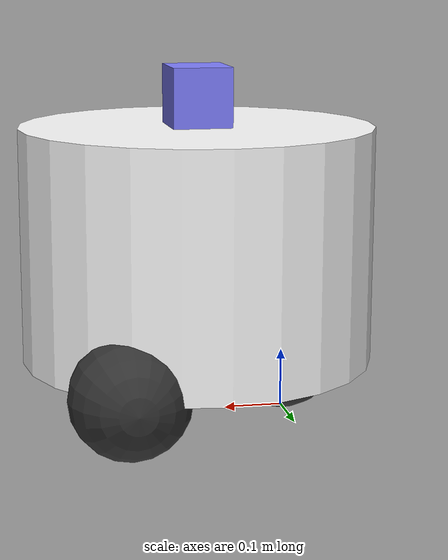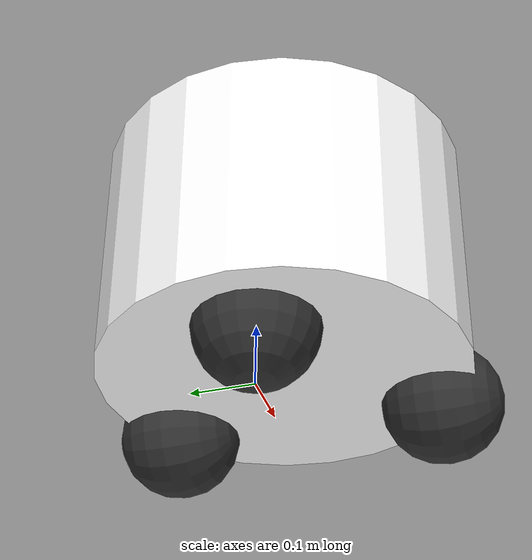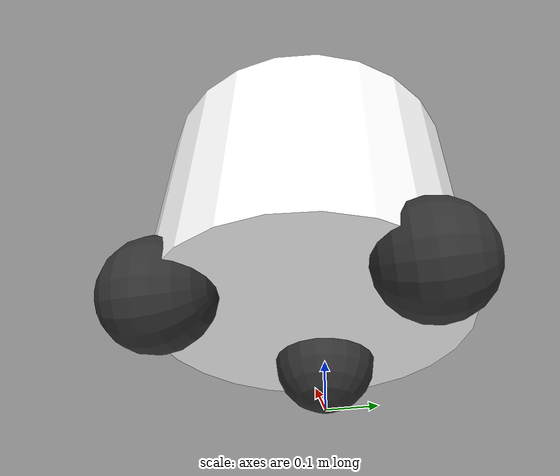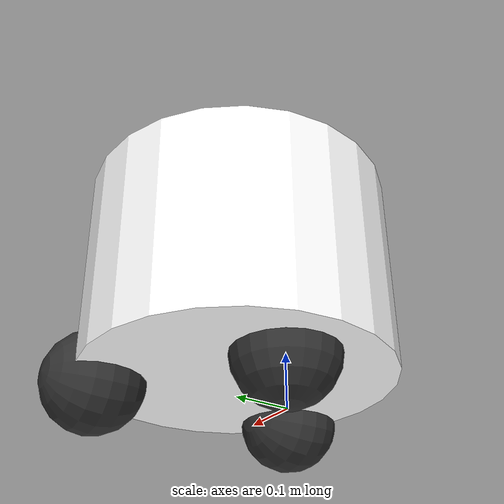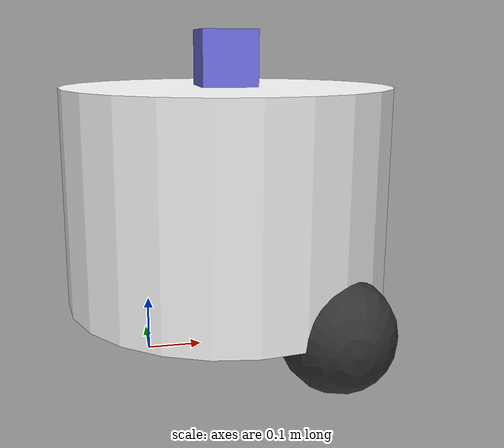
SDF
<?xml version="1.0" ?>
<sdf version="1.6">
<model name='vehicle_blue'>
      <pose>0 0  0.3 0 -0 0</pose>

      <link name='chassis'>
        <pose>0.151427 -0 0.00 0 -0 0</pose>
        <inertial>
          <mass>1.14395</mass>
          <inertia>
            <ixx>0.126164</ixx>
            <ixy>0</ixy>
            <ixz>0</ixz>
            <iyy>0.416519</iyy>
            <iyz>0</iyz>
            <izz>0.481014</izz>
          </inertia>
        </inertial>
        <visual name='visual'>
          <geometry>
            <cylinder>
              <radius> 0.3 </radius>
              <length> 0.4 </length>
            </cylinder>
          </geometry>
          <material>
            <ambient>1.5 1.5 1.0 1</ambient>
            <diffuse>1.5 1.5 1.0 1</diffuse>
            <specular>0.0 0.0 1.0 1</specular>
          </material>
        </visual>
        <collision name='collision'>
          <geometry>
            <cylinder>
              <radius> 0.3 </radius>
              <length> 0.4 </length>
            </cylinder>
          </geometry>
        </collision>
      </link>

      <link name='left_wheel'>
        <pose>0.3 0.225 -0.2 -1.5707 0 0</pose>
        <inertial>
          <mass>2</mass>
          <inertia>
            <ixx>0.01</ixx>
            <ixy>0</ixy>
            <ixz>0</ixz>
            <iyy>0.01</iyy>
            <iyz>0</iyz>
            <izz>0.01</izz>
          </inertia>
        </inertial>
        <visual name='visual'>
          <geometry>
            <sphere>
              <radius>0.1</radius>
            </sphere>
          </geometry>
          <material>
            <ambient>0.2 0.2 0.2 1</ambient>
            <diffuse>0.2 0.2 0.2 1</diffuse>
            <specular>0.2 0.2 0.2 1</specular>
          </material>
        </visual>
        <collision name='collision'>
          <geometry>
            <sphere>
              <radius>0.1</radius>
            </sphere>
          </geometry>
        </collision>
      </link>

      <link name='right_wheel'>
        <pose>0.3 -0.225 -0.2 -1.5707 0 0</pose>
        <inertial>
          <mass>2</mass>
          <inertia>
            <ixx>0.01</ixx>
            <ixy>0</ixy>
            <ixz>0</ixz>
            <iyy>0.01</iyy>
            <iyz>0</iyz>
            <izz>0.01</izz>
          </inertia>
        </inertial>
        <visual name='visual'>
          <geometry>
            <sphere>
              <radius>0.1</radius>
            </sphere>
          </geometry>
          <material>
            <ambient>0.2 0.2 0.2 1</ambient>
            <diffuse>0.2 0.2 0.2 1</diffuse>
            <specular>0.2 0.2 0.2 1</specular>
          </material>
        </visual>
        <collision name='collision'>
          <geometry>
            <sphere>
              <radius>0.1</radius>
            </sphere>
          </geometry>
        </collision>
      </link>

      <link name='caster'>
        <pose>-0.0 -0 -0.2 0 -0 0</pose>
        <inertial>
          <mass>1</mass>
          <inertia>
            <ixx>0.1</ixx>
            <ixy>0</ixy>
            <ixz>0</ixz>
            <iyy>0.1</iyy>
            <iyz>0</iyz>
            <izz>0.1</izz>
          </inertia>
        </inertial>
        <visual name='visual'>
          <geometry>
            <sphere>
              <radius>0.1</radius>
            </sphere>
          </geometry>
          <material>
            <ambient>0.2 0.2 0.2 1</ambient>
            <diffuse>0.2 0.2 0.2 1</diffuse>
            <specular>0.2 0.2 0.2 1</specular>
          </material>
        </visual>
        <collision name='collision'>
          <geometry>
            <sphere>
              <radius>0.1</radius>
            </sphere>
          </geometry>
        </collision>
      </link>

      <link name='lidar'>
        <pose>0.15 -0 0.25 0 -0 0</pose>
        <inertial>
          <mass>1.14395</mass>
          <inertia>
            <ixx>0.126164</ixx>
            <ixy>0</ixy>
            <ixz>0</ixz>
            <iyy>0.416519</iyy>
            <iyz>0</iyz>
            <izz>0.481014</izz>
          </inertia>
        </inertial>
        <visual name='visual'>
          <geometry>
            <box>
              <size>0.1 0.11 0.1</size>
            </box>
          </geometry>
          <material>
            <ambient>0.5 0.5 1.0 1</ambient>
            <diffuse>0.5 0.5 1.0 1</diffuse>
            <specular>0.0 0.0 1.0 1</specular>
          </material>
        </visual>
        <sensor name='gpu_lidar' type='gpu_lidar'>
          <topic>lidar</topic>
          <update_rate>1000</update_rate>
          <lidar>
            <scan>
              <horizontal>
                <samples>100</samples>
                <resolution>1</resolution>
                <min_angle>-3.14</min_angle>
                <max_angle>3.14</max_angle>
              </horizontal>
              <vertical>
                <samples>1</samples>
                <resolution>1</resolution>
                <min_angle>-0</min_angle>
                <max_angle>0</max_angle>
              </vertical>
            </scan>
            <range>
              <min>0.08</min>
              <max>5.0</max>
              <resolution>0.01</resolution>
            </range>
          </lidar>
          <alwaysOn>1</alwaysOn>
          <visualize>true</visualize>
        </sensor>
      </link>

      <joint name='left_wheel_joint' type='revolute'>
        <parent>chassis</parent>
        <child>left_wheel</child>
        <axis>
          <xyz>0 0 1</xyz>
          <limit>
            <lower>-1.79769e+308</lower>
            <upper>1.79769e+308</upper>
          </limit>
        </axis>
      </joint>

       <joint name='lidar_joint' type='fixed'>
        <parent>chassis</parent>
        <child>lidar</child>
        <axis>
          <xyz>0 0 1</xyz>
          <limit>
            <lower>-1.79769e+308</lower>
            <upper>1.79769e+308</upper>
          </limit>
        </axis>
      </joint>

      <joint name='right_wheel_joint' type='revolute'>
        <parent>chassis</parent>
        <child>right_wheel</child>
        <axis>
          <xyz>0 0 1</xyz>
          <limit>
            <lower>-1.79769e+308</lower>
            <upper>1.79769e+308</upper>
          </limit>
        </axis>
      </joint>

      <joint name='caster_wheel' type='ball'>
        <parent>chassis</parent>
        <child>caster</child>
      </joint>

      <plugin
        filename="ignition-gazebo-diff-drive-system"
        name="ignition::gazebo::systems::DiffDrive">
        <left_joint>left_wheel_joint</left_joint>
        <right_joint>right_wheel_joint</right_joint>
        <wheel_separation>0.450</wheel_separation>
        <wheel_radius>0.1</wheel_radius>
        <odom_publish_frequency>1000</odom_publish_frequency>
      </plugin>

    </model>
  </sdf>
